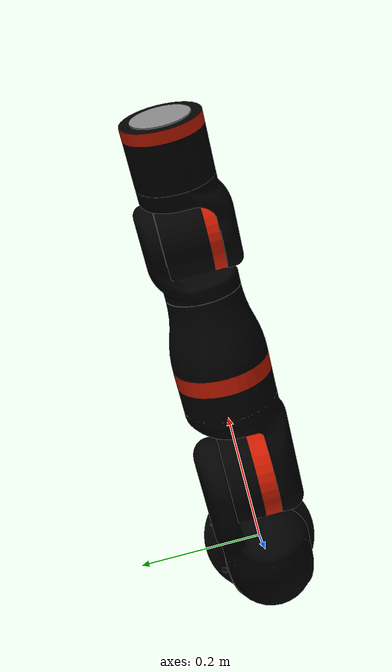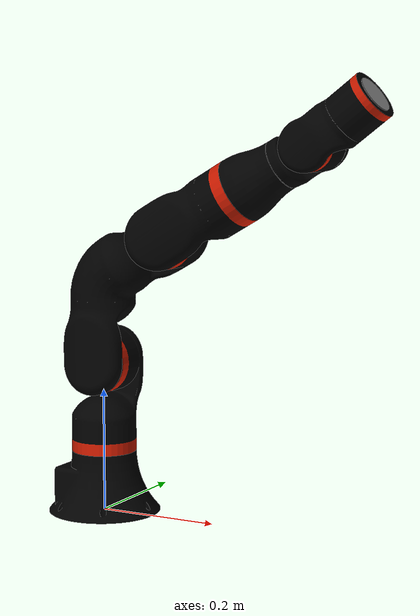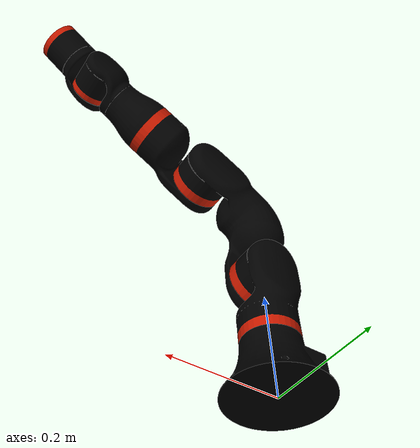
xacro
<?xml version="1.0"?>
<robot xmlns:xacro="http://www.ros.org/wiki/xacro" name="igus_rebel_fixed_spawn">

  <!-- ================== ROBOT MODEL ================== -->
  <xacro:include filename="$(find igus_rebel_description_ros2)/igus_rebel.urdf"/>

  <!-- ================== TRANSMISSIONS ================== -->
  <transmission name="joint_1_trans">
    <type>transmission_interface/SimpleTransmission</type>
    <joint name="joint_1">
      <hardwareInterface>hardware_interface/PositionJointInterface</hardwareInterface>
    </joint>
    <actuator name="joint_1_motor">
      <mechanicalReduction>1</mechanicalReduction>
    </actuator>
  </transmission>

  <transmission name="joint_2_trans">
    <type>transmission_interface/SimpleTransmission</type>
    <joint name="joint_2">
      <hardwareInterface>hardware_interface/PositionJointInterface</hardwareInterface>
    </joint>
    <actuator name="joint_2_motor">
      <mechanicalReduction>1</mechanicalReduction>
    </actuator>
  </transmission>

  <transmission name="joint_3_trans">
    <type>transmission_interface/SimpleTransmission</type>
    <joint name="joint_3">
      <hardwareInterface>hardware_interface/PositionJointInterface</hardwareInterface>
    </joint>
    <actuator name="joint_3_motor">
      <mechanicalReduction>1</mechanicalReduction>
    </actuator>
  </transmission>

  <transmission name="joint_4_trans">
    <type>transmission_interface/SimpleTransmission</type>
    <joint name="joint_4">
      <hardwareInterface>hardware_interface/PositionJointInterface</hardwareInterface>
    </joint>
    <actuator name="joint_4_motor">
      <mechanicalReduction>1</mechanicalReduction>
    </actuator>
  </transmission>

  <transmission name="joint_5_trans">
    <type>transmission_interface/SimpleTransmission</type>
    <joint name="joint_5">
      <hardwareInterface>hardware_interface/PositionJointInterface</hardwareInterface>
    </joint>
    <actuator name="joint_5_motor">
      <mechanicalReduction>1</mechanicalReduction>
    </actuator>
  </transmission>

  <transmission name="joint_6_trans">
    <type>transmission_interface/SimpleTransmission</type>
    <joint name="joint_6">
      <hardwareInterface>hardware_interface/PositionJointInterface</hardwareInterface>
    </joint>
    <actuator name="joint_6_motor">
      <mechanicalReduction>1</mechanicalReduction>
    </actuator>
  </transmission>

</robot>

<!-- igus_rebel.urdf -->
<!-- |    This document was autogenerated by xacro from src/iRC_ROS/irc_ros_description/urdf/igus_rebel_6dof.urdf.xacro | -->
<!-- |    EDITING THIS FILE BY HAND IS NOT RECOMMENDED                                 | -->
<robot name="igus_rebel_6dof">
  <link name="base_link">
    <visual>
      <geometry>
        <mesh filename="file:///home/unvrx/ros_ws/install/irc_ros_description/share/irc_ros_description/meshes/igus_rebel_6dof_00/Joint0.dae"/>
      </geometry>
    </visual>
    <collision>
      <geometry>
        <mesh filename="file:///home/unvrx/ros_ws/install/irc_ros_description/share/irc_ros_description/meshes/igus_rebel_6dof_00/Joint0Coll.dae"/>
      </geometry>
    </collision>
    <inertial>
      <mass value="1.0"/>
      <inertia ixx="1.0" ixy="0.0" ixz="0.0" iyy="1.0" iyz="0.0" izz="1.0"/>
    </inertial>
  </link>
  <joint name="joint1" type="revolute">
    <parent link="base_link"/>
    <child link="link_1"/>
    <origin rpy="0.0 0.0 0.0" xyz="0.0 0 0.100"/>
    <axis xyz="0 0 -1"/>
    <limit effort="330.0" lower="-3.12413936106985" upper="3.12413936106985" velocity="0.7853981633974483"/>
  </joint>
  <link name="link_1">
    <visual>
      <geometry>
        <mesh filename="file:///home/unvrx/ros_ws/install/irc_ros_description/share/irc_ros_description/meshes/igus_rebel_6dof_00/Joint1.dae"/>
      </geometry>
      <origin rpy="0 0 0" xyz="0 0 0"/>
    </visual>
    <collision>
      <geometry>
        <mesh filename="file:///home/unvrx/ros_ws/install/irc_ros_description/share/irc_ros_description/meshes/igus_rebel_6dof_00/Joint1Coll.dae"/>
      </geometry>
      <origin rpy="0 0 0" xyz="0 0 0"/>
    </collision>
    <inertial>
      <mass value="0.1"/>
      <inertia ixx="0.03" ixy="0.0" ixz="0.0" iyy="0.03" iyz="0.0" izz="0.03"/>
    </inertial>
  </link>
  <joint name="joint2" type="revolute">
    <parent link="link_1"/>
    <child link="link_2"/>
    <origin rpy="0.0 0.5235987755982988 0.0" xyz="0.0 0 0.149"/>
    <axis xyz="0 1 0"/>
    <!-- pi*2/3 are the physical limits, but to avoid any collisions we set the actual limits lower -->
    <limit effort="330.0" lower="-1.9198621771937623" upper="1.9198621771937623" velocity="0.7853981633974483"/>
  </joint>
  <link name="link_2">
    <visual>
      <geometry>
        <mesh filename="file:///home/unvrx/ros_ws/install/irc_ros_description/share/irc_ros_description/meshes/igus_rebel_6dof_00/Joint2.dae"/>
      </geometry>
      <origin rpy="0 0 0" xyz="0 0 0"/>
    </visual>
    <collision>
      <geometry>
        <mesh filename="file:///home/unvrx/ros_ws/install/irc_ros_description/share/irc_ros_description/meshes/igus_rebel_6dof_00/Joint2Coll.dae"/>
      </geometry>
      <origin rpy="0 0 0" xyz="0 0 0"/>
    </collision>
    <inertial>
      <mass value="0.1"/>
      <inertia ixx="0.03" ixy="0.0" ixz="0.0" iyy="0.03" iyz="0.0" izz="0.03"/>
    </inertial>
  </link>
  <joint name="joint3" type="revolute">
    <parent link="link_2"/>
    <child link="link_5"/>
    <origin rpy="0.0 0.5235987755982988 0.0" xyz="0.0 0.0 0.2384"/>
    <axis xyz="0 1 0"/>
    <!-- pi*2/3 are the physical limits, but to avoid any collisions we set the actual limits lower -->
    <limit effort="330.0" lower="-1.9198621771937623" upper="1.9198621771937623" velocity="0.7853981633974483"/>
  </joint>
  <link name="link_5">
    <visual>
      <geometry>
        <mesh filename="file:///home/unvrx/ros_ws/install/irc_ros_description/share/irc_ros_description/meshes/igus_rebel_6dof_00/Joint3.dae"/>
      </geometry>
      <origin rpy="0 0 0" xyz="0 0 0"/>
    </visual>
    <collision>
      <geometry>
        <mesh filename="file:///home/unvrx/ros_ws/install/irc_ros_description/share/irc_ros_description/meshes/igus_rebel_6dof_00/Joint3Coll.dae"/>
      </geometry>
      <origin rpy="0 0 0" xyz="0 0 0"/>
    </collision>
    <inertial>
      <mass value="0.1"/>
      <inertia ixx="0.03" ixy="0.0" ixz="0.0" iyy="0.03" iyz="0.0" izz="0.03"/>
    </inertial>
  </link>
  <joint name="joint4" type="revolute">
    <parent link="link_5"/>
    <child link="link_6"/>
    <!-- TODO The 0.03m offset are most likely caused by the mesh file (Issue 15)-->
    <origin rpy="0.0 0.0 0.0" xyz="0.0 0 0.119"/>
    <axis xyz="0 0 1"/>
    <limit effort="330.0" lower="-3.12413936106985" upper="3.12413936106985" velocity="0.7853981633974483"/>
  </joint>
  <link name="link_6">
    <visual>
      <geometry>
        <mesh filename="file:///home/unvrx/ros_ws/install/irc_ros_description/share/irc_ros_description/meshes/igus_rebel_6dof_00/Joint4.dae"/>
      </geometry>
      <origin rpy="0 0 0" xyz="0 0 0"/>
    </visual>
    <collision>
      <geometry>
        <mesh filename="file:///home/unvrx/ros_ws/install/irc_ros_description/share/irc_ros_description/meshes/igus_rebel_6dof_00/Joint4Coll.dae"/>
      </geometry>
      <origin rpy="0 0 0" xyz="0 0 0"/>
    </collision>
    <inertial>
      <mass value="0.1"/>
      <inertia ixx="0.03" ixy="0.0" ixz="0.0" iyy="0.03" iyz="0.0" izz="0.03"/>
    </inertial>
  </link>
  <joint name="joint5" type="revolute">
    <parent link="link_6"/>
    <child link="link_7"/>
    <!-- TODO The 0.03m offset are most likely caused by the mesh file (Issue 15) -->
    <origin rpy="0.0 -0.1308996938995747 0.0" xyz="0.0 0 0.17"/>
    <axis xyz="0 1 0"/>
    <limit effort="330.0" lower="-1.5271630954950381" upper="1.7889624832941877" velocity="0.7853981633974483"/>
  </joint>
  <link name="link_7">
    <visual>
      <geometry>
        <mesh filename="file:///home/unvrx/ros_ws/install/irc_ros_description/share/irc_ros_description/meshes/igus_rebel_6dof_00/Joint5.dae"/>
      </geometry>
      <origin rpy="0 0 0" xyz="0 0 0"/>
    </visual>
    <collision>
      <geometry>
        <mesh filename="file:///home/unvrx/ros_ws/install/irc_ros_description/share/irc_ros_description/meshes/igus_rebel_6dof_00/Joint5Coll.dae"/>
      </geometry>
      <origin rpy="0 0 0" xyz="0 0 0"/>
    </collision>
    <inertial>
      <mass value="0.1"/>
      <inertia ixx="0.03" ixy="0.0" ixz="0.0" iyy="0.03" iyz="0.0" izz="0.03"/>
    </inertial>
  </link>
  <joint name="joint6" type="revolute">
    <parent link="link_7"/>
    <child link="link_8"/>
    <origin rpy="0.0 0.0 0.0" xyz="0.0 0 0.1208"/>
    <axis xyz="0 0 1"/>
    <limit effort="330.0" lower="-3.12413936106985" upper="3.12413936106985" velocity="0.7853981633974483"/>
  </joint>
  <link name="link_8">
    <visual>
      <geometry>
        <mesh filename="file:///home/unvrx/ros_ws/install/irc_ros_description/share/irc_ros_description/meshes/igus_rebel_6dof_00/Joint6.dae"/>
      </geometry>
      <origin rpy="0 0 0" xyz="0.0 0 0"/>
    </visual>
    <collision>
      <geometry>
        <mesh filename="file:///home/unvrx/ros_ws/install/irc_ros_description/share/irc_ros_description/meshes/igus_rebel_6dof_00/Joint6Coll.dae"/>
      </geometry>
      <origin rpy="0 0 0" xyz="0.0 0 0"/>
    </collision>
    <inertial>
      <mass value="0.1"/>
      <inertia ixx="0.03" ixy="0.0" ixz="0.0" iyy="0.03" iyz="0.0" izz="0.03"/>
    </inertial>
  </link>
  <joint name="joint7" type="fixed">
    <parent link="link_8"/>
    <child link="flange"/>
    <origin rpy="0.0 -1.5707963267948966 0.0" xyz="0.0 0 0.0012"/>
    <axis xyz="0 0 0"/>
  </joint>
  <link name="flange">
    </link>
  <joint name="flange_to_tool0" type="fixed">
    <parent link="flange"/>
    <child link="tool0"/>
    <origin rpy="0.0 0.0 0.0" xyz="0.0 0.0 0.0"/>
    <axis xyz="0 0 0"/>
  </joint>
  <link name="tool0">
    </link>
  <ros2_control name="igus_rebel_6dof" type="system">
    <hardware>
      <plugin>irc_hardware/IrcRosCan</plugin>
      <param name="can_socket">can0</param>
    </hardware>
    <joint name="joint1">
      <command_interface name="position">
        <param name="min">-3.12413936106985</param>
        <param name="max">3.12413936106985</param>
      </command_interface>
      <!-- If you want to increase the velocity and/or speed limit please consult the readme of this package first -->
      <command_interface name="velocity">
        <param name="min">-0.7853981633974483</param>
        <param name="max">0.7853981633974483</param>
      </command_interface>
      <state_interface name="position">
        <param name="initial_value">0.0</param>
      </state_interface>
      <!-- Velocity is required for moveit+mock_components -->
      <state_interface name="velocity">
        <param name="initial_value">0.0</param>
      </state_interface>
      <!-- CPRCAN specific parameters -->
      <param name="can_id">0x10</param>
      <param name="gear_scale">1443.55</param>
      <param name="controller_type">closed_loop</param>
      <!-- CRI specific parameters -->
      <param name="cri_joint_offset">0</param>
    </joint>
    <joint name="joint2">
      <command_interface name="position">
        <param name="min">-2.0943951023931953</param>
        <param name="max">2.0943951023931953</param>
      </command_interface>
      <!-- If you want to increase the velocity and/or speed limit please consult the readme of this package first -->
      <command_interface name="velocity">
        <param name="min">-0.7853981633974483</param>
        <param name="max">0.7853981633974483</param>
      </command_interface>
      <state_interface name="position">
        <param name="initial_value">0.0</param>
      </state_interface>
      <!-- Velocity is required for moveit+mock_components -->
      <state_interface name="velocity">
        <param name="initial_value">0.0</param>
      </state_interface>
      <!-- CPRCAN specific parameters -->
      <param name="can_id">0x20</param>
      <param name="gear_scale">1443.55</param>
      <param name="controller_type">closed_loop</param>
      <!-- CRI specific parameters -->
      <param name="cri_joint_offset">-30</param>
    </joint>
    <joint name="joint3">
      <command_interface name="position">
        <param name="min">-2.0943951023931953</param>
        <param name="max">2.0943951023931953</param>
      </command_interface>
      <!-- If you want to increase the velocity and/or speed limit please consult the readme of this package first -->
      <command_interface name="velocity">
        <param name="min">-0.7853981633974483</param>
        <param name="max">0.7853981633974483</param>
      </command_interface>
      <state_interface name="position">
        <param name="initial_value">0.0</param>
      </state_interface>
      <!-- Velocity is required for moveit+mock_components -->
      <state_interface name="velocity">
        <param name="initial_value">0.0</param>
      </state_interface>
      <!-- CPRCAN specific parameters -->
      <param name="can_id">0x30</param>
      <param name="gear_scale">1443.55</param>
      <param name="controller_type">closed_loop</param>
      <!-- CRI specific parameters -->
      <param name="cri_joint_offset">-30</param>
    </joint>
    <joint name="joint4">
      <command_interface name="position">
        <param name="min">-3.12413936106985</param>
        <param name="max">3.12413936106985</param>
      </command_interface>
      <!-- If you want to increase the velocity and/or speed limit please consult the readme of this package first -->
      <command_interface name="velocity">
        <param name="min">-0.7853981633974483</param>
        <param name="max">0.7853981633974483</param>
      </command_interface>
      <state_interface name="position">
        <param name="initial_value">0.0</param>
      </state_interface>
      <!-- Velocity is required for moveit+mock_components -->
      <state_interface name="velocity">
        <param name="initial_value">0.0</param>
      </state_interface>
      <!-- CPRCAN specific parameters -->
      <param name="can_id">0x40</param>
      <param name="gear_scale">-1443.55</param>
      <param name="controller_type">closed_loop</param>
      <!-- CRI specific parameters -->
      <param name="cri_joint_offset">0</param>
    </joint>
    <joint name="joint5">
      <command_interface name="position">
        <param name="min">-1.658062789394613</param>
        <param name="max">1.658062789394613</param>
      </command_interface>
      <!-- If you want to increase the velocity and/or speed limit please consult the readme of this package first -->
      <command_interface name="velocity">
        <param name="min">-0.7853981633974483</param>
        <param name="max">0.7853981633974483</param>
      </command_interface>
      <state_interface name="position">
        <param name="initial_value">0.0</param>
      </state_interface>
      <!-- Velocity is required for moveit+mock_components -->
      <state_interface name="velocity">
        <param name="initial_value">0.0</param>
      </state_interface>
      <!-- CPRCAN specific parameters -->
      <param name="can_id">0x50</param>
      <param name="gear_scale">1031.11</param>
      <param name="controller_type">closed_loop</param>
      <!-- CRI specific parameters -->
      <param name="cri_joint_offset">7.5</param>
    </joint>
    <joint name="joint6">
      <command_interface name="position">
        <param name="min">-3.12413936106985</param>
        <param name="max">3.12413936106985</param>
      </command_interface>
      <!-- If you want to increase the velocity and/or speed limit please consult the readme of this package first -->
      <command_interface name="velocity">
        <param name="min">-0.7853981633974483</param>
        <param name="max">0.7853981633974483</param>
      </command_interface>
      <state_interface name="position">
        <param name="initial_value">0.0</param>
      </state_interface>
      <!-- Velocity is required for moveit+mock_components -->
      <state_interface name="velocity">
        <param name="initial_value">0.0</param>
      </state_interface>
      <!-- CPRCAN specific parameters -->
      <param name="can_id">0x60</param>
      <param name="gear_scale">-1031.11</param>
      <param name="controller_type">closed_loop</param>
      <!-- CRI specific parameters -->
      <param name="cri_joint_offset">0</param>
    </joint>
    <gpio name="dio_base">
      <param name="can_id">0x70</param>
      <command_interface data_type="bool" name="digital_output_0"/>
      <command_interface data_type="bool" name="digital_output_1"/>
      <command_interface data_type="bool" name="digital_output_2"/>
      <command_interface data_type="bool" name="digital_output_3"/>
      <command_interface data_type="bool" name="digital_output_4"/>
      <command_interface data_type="bool" name="digital_output_5"/>
      <command_interface data_type="bool" name="digital_output_6"/>
      <state_interface data_type="bool" name="digital_input_0"/>
      <state_interface data_type="bool" name="digital_input_1"/>
      <state_interface data_type="bool" name="digital_input_2"/>
      <state_interface data_type="bool" name="digital_input_3"/>
      <state_interface data_type="bool" name="digital_input_4"/>
      <state_interface data_type="bool" name="digital_input_5"/>
      <state_interface data_type="bool" name="digital_input_6"/>
    </gpio>
    <gpio name="dio_arm">
      <param name="can_id">0x80</param>
      <command_interface data_type="bool" name="digital_output_0"/>
      <command_interface data_type="bool" name="digital_output_1"/>
      <state_interface data_type="bool" name="digital_input_0"/>
      <state_interface data_type="bool" name="digital_input_1"/>
    </gpio>
  </ros2_control>
  <!-- Add world link -->
  <link name="world"/>
  <joint name="world_to_base" type="fixed">
    <parent link="world"/>
    <child link="base_link"/>
    <origin rpy="0.0 0.0 0.0" xyz="0.0 0.0 0.0"/>
  </joint>
  <!-- Make sure tcp exists even if no tool is attached -->
  <joint name="flange_to_tcp" type="fixed">
    <parent link="flange"/>
    <child link="tcp"/>
    <origin rpy="0.0 0.0 0.0" xyz="0.0 0.0 0.0"/>
    <axis xyz="0 0 0"/>
  </joint>
  <link name="tcp">
    <inertial>
      <mass value="0.1"/>
      <inertia ixx="0.03" ixy="0.0" ixz="0.0" iyy="0.03" iyz="0.0" izz="0.03"/>
    </inertial>
  </link>
</robot>
